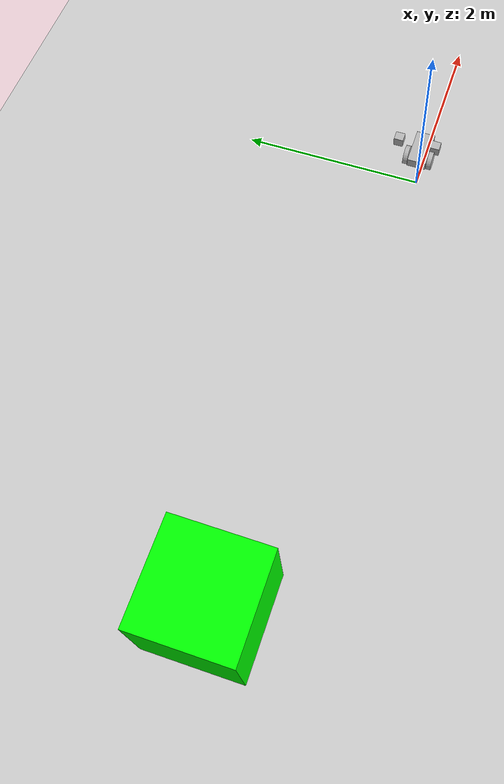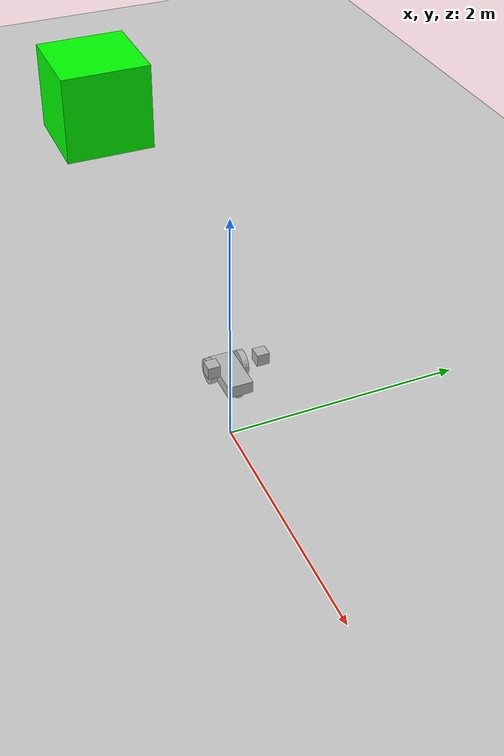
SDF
<?xml version="1.0"?>
<sdf version="1.4">
  <world name="default">

    <!-- Ground Plane -->
    <include>
      <uri>model://ground_plane</uri>
    </include>

    <include>
      <uri>model://sun</uri>
    </include>

    <model name="DiffDrive">
      <include>
        <uri>model://d_diff_drive_robot</uri>
      </include>
      <pose>0.0 0 0.5 0 0 3.14159</pose>
      <plugin name="model_diff_drive" filename="build/libmodel_diff_drive.so"/>
    </model>

        <model name="box_model">
            <link name="body">
                <pose>-5.123 .5 0.5 0 0 0</pose>
                <collision name="geom">
                    <geometry>
                        <box>
                            <size>1 1 1</size>
                        </box>
                    </geometry>
                </collision>
                <visual name="visual1">
                    <geometry>
                        <box>
                            <size>1 1 1</size>
                        </box>
                    </geometry>
  <material>
    <ambient>0 1 0 1</ambient>
    <diffuse>0 1 0 1</diffuse>
    <specular>0.1 0.1 0.1 1</specular>
    <emissive>0 0 0 0</emissive>
  </material>
                </visual>
            </link>
            <static>true</static>
        </model>
<!-- Light Source -->
        <light type="directional" name="sun">
            <pose>0 0 10 0 0 0</pose>
            <diffuse>1.0 1.0 1.0 1</diffuse>
            <specular>0 0 0 1</specular>
            <attenuation>
                <range>20</range>
                <linear>0.01</linear>
                <constant>0.8</constant>
                <quadratic>0.0</quadratic>
            </attenuation>
            <direction>0.0 0.2 -8.0</direction>
            <cast_shadows>true</cast_shadows>
        </light>

  </world>
</sdf>

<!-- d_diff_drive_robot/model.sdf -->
<sdf version='1.4'>
  <model name="d_diff_drive_robot">
<!-- No Physics -->

<!-- Physics -->
    <static>false</static>
<!-- Box/Chasis -->
     <link name='chassis'>
        <pose>0 0 .1 0 0 0</pose>

        <collision name='collision'>
          <geometry>
            <box>
              <size>.4 .2 .1</size>
            </box>
          </geometry>
        </collision>

        <visual name='visual'>
          <geometry>
            <box>
              <size>.4 .2 .1</size>
            </box>
          </geometry>
        </visual>

<!-- Caster -->
      <collision name='caster_collision'>
        <pose>-0.15 0 -0.05 0 0 0</pose>
        <geometry>
          <sphere>
          <radius>.05</radius>
        </sphere>
      </geometry>

      <surface>
        <friction>
          <ode>
            <mu>0</mu>
            <mu2>0</mu2>
            <slip1>1.0</slip1>
            <slip2>1.0</slip2>
          </ode>
        </friction>
      </surface>
    </collision>

    <visual name='caster_visual'>
      <pose>-0.15 0 -0.05 0 0 0</pose>
      <geometry>
        <sphere>
          <radius>.05</radius>
        </sphere>
      </geometry>
    </visual>

  </link>

<!-- Left Wheel -->

  <link name="left_wheel">
    <pose>0.1 0.13 0.1 0 1.5707 1.5707</pose>
    <collision name="collision">
      <geometry>
        <cylinder>
          <radius>.1</radius>
          <length>.05</length>
        </cylinder>
      </geometry>
    </collision>
    <visual name="visual">
      <geometry>
        <cylinder>
          <radius>.1</radius>
          <length>.05</length>
        </cylinder>
      </geometry>
    </visual>
  </link>

<!-- Right Wheel -->
  <link name="right_wheel">
    <pose>0.1 -0.13 0.1 0 1.5707 1.5707</pose>
    <collision name="collision">
      <geometry>
        <cylinder>
          <radius>.1</radius>
          <length>.05</length>
        </cylinder>
      </geometry>
    </collision>
    <visual name="visual">
      <geometry>
        <cylinder>
          <radius>.1</radius>
          <length>.05</length>
        </cylinder>
      </geometry>
    </visual>
  </link>

<!-- Axel -->
<joint type="revolute" name="left_wheel_hinge">
    <pose>0 0 -0.03 0 0 0</pose>
    <child>left_wheel</child>
    <parent>chassis</parent>
    <axis>
      <xyz>0 1 0</xyz>
    </axis>
  </joint>

  <joint type="revolute" name="right_wheel_hinge">
    <pose>0 0 0.03 0 0 0</pose>
    <child>right_wheel</child>
    <parent>chassis</parent>
    <axis>
      <xyz>0 1 0</xyz>
    </axis>
  </joint>

<!-- Lidar -->

  <!-- Camera -->

   <include>
      <uri>model://camera</uri>
      <pose>0.0 0.15 0.2 0 0 0</pose>
      <name>cameraL</name>
    </include>
  <joint name="camera_joint_2_L" type="revolute">
    <child>cameraL::link</child>
    <parent>chassis</parent>
    <axis>
      <xyz>0 0 1</xyz>
      <limit>
        <upper>0</upper>
        <lower>0</lower>
      </limit>
    </axis>
  </joint>

   <include>
      <uri>model://camera</uri>
      <pose>0.0 -0.25 0.2 0 0 0</pose>
      <name>cameraR</name>
    </include>
  <joint name="camera_joint_2_R" type="revolute">
    <child>cameraR::link</child>
    <parent>chassis</parent>
    <axis>
      <xyz>0 0 1</xyz>
      <limit>
        <upper>0</upper>
        <lower>0</lower>
      </limit>
    </axis>
  </joint>

    <plugin filename="libmodel_diff_drive.so" name="model_diff_drive_plugin">

      <left_wheel_hinge>left_wheel_hinge</left_wheel_hinge>
      <right_wheel_hinge>right_wheel_hinge</right_wheel_hinge>
    </plugin>
  </model>

</sdf>

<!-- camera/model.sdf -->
<sdf version="1.5">
  <model name="camera">
    <pose>0 0 0.05 0 0 0</pose>
    <link name="link">
      <inertial>
        <mass>0.1</mass>
        <inertia>
          <ixx>0.000166667</ixx>
          <iyy>0.000166667</iyy>
          <izz>0.000166667</izz>
        </inertia>
      </inertial>
      <collision name="collision">
        <geometry>
          <box>
            <size>0.1 0.1 0.1</size>
          </box>
        </geometry>
      </collision>
      <visual name="visual">
        <geometry>
          <box>
            <size>0.1 0.1 0.1</size>
          </box>
        </geometry>
      </visual>
      <sensor name="camera" type="camera">
        <camera>
          <horizontal_fov>1.047</horizontal_fov>
          <image>
            <width>320</width>
            <height>240</height>
          </image>
          <clip>
            <near>0.1</near>
            <far>100</far>
          </clip>
        </camera>
        <always_on>1</always_on>
        <update_rate>30</update_rate>
        <visualize>true</visualize>
      </sensor>
    </link>
  </model>
</sdf>
